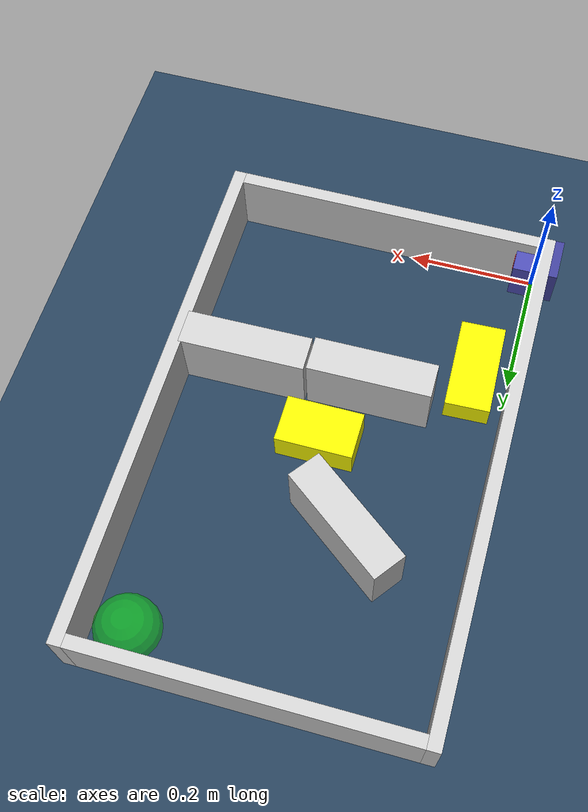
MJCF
<?xml version="1.0" ?>
<mujoco model="generated_environment">
  <option cone="elliptic" integrator="implicitfast" iterations="100" timestep="0.002"/>
  <default>
    <geom density="1"/>
  </default>
  <asset>
    <texture builtin="gradient" height="3072" rgb1="0.3 0.5 0.7" rgb2="0 0 0" type="skybox" width="512"/>
    <texture builtin="checker" height="300" mark="edge" markrgb="0.8 0.8 0.8" name="groundplane" rgb1="0.2 0.3 0.4" rgb2="0.1 0.2 0.3" type="2d" width="300"/>
    <material name="groundplane" reflectance="0.2" texrepeat="5 5" texture="groundplane" texuniform="true"/>
    <material name="robot" rgba="1.0 1.0 0.0 1.0"/>
  </asset>
  <include file="/home/dhruv/projects_dhruv/namo/namo_cpp/test_xml/little-car-modeling-package/assets/mjcf/little_car.xml"/>
  <worldbody>
    <light dir="0 0 -1" directional="true" pos="0 0 1.5"/>
    <geom condim="4" friction="0.5 0.005 0.001" material="groundplane" name="floor" size="0 0 0.05" type="plane"/>
    <body name="walls">
      <geom name="wall_1" condim="4" pos="-0.01 0.3875 0.05" friction="1 0.005 0.0001" rgba="0.800000011920929 0.800000011920929 0.800000011920929 1.0" size="0.01 0.40750000000000003 0.05" type="box"/>
      <geom name="wall_2" condim="4" pos="0.5 0.3875 0.05" friction="1 0.005 0.0001" rgba="0.800000011920929 0.800000011920929 0.800000011920929 1.0" size="0.01 0.40750000000000003 0.05" type="box"/>
      <geom name="wall_3" condim="4" pos="0.245 -0.01 0.05" friction="1 0.005 0.0001" rgba="0.800000011920929 0.800000011920929 0.800000011920929 1.0" size="0.245 0.01 0.05" type="box"/>
      <geom name="wall_4" condim="4" pos="0.245 0.785 0.05" friction="1 0.005 0.0001" rgba="0.800000011920929 0.800000011920929 0.800000011920929 1.0" size="0.245 0.01 0.05" type="box"/>
    </body>
    <body name="obstacle_1_movable">
      <geom name="obstacle_1_movable" condim="4" pos="0.05509595357040654 0.1998308729599578 0.02" quat="-0.01683137708236685 0 0 0.9998583423393091" friction="1 0.005 0.0001" rgba="1 1 0 1" size="0.035 0.075 0.02" type="box" mass="0.1"/>
      <joint type="free"/>
    </body>
    <body name="obstacle_2_movable">
      <geom name="obstacle_2_movable" condim="4" pos="0.2582351481800719 0.3701912406855699 0.025" quat="-0.7067162852682533 0 0 0.7074970615745628" friction="1 0.005 0.0001" rgba="1 1 0 1" size="0.0375 0.06 0.025" type="box" mass="0.1"/>
      <joint type="free"/>
    </body>
    <body name="wall_5">
      <geom name="wall_5" condim="4" pos="0.20189043311880334 0.2781717126324723 0.05" quat="0.9999920594126247 0 0 0.003985111252862593" friction="1 0.005 0.0001" rgba="0.800000011920929 0.800000011920929 0.800000011920929 1.0" size="0.095 0.0275 0.05" type="box"/>
    </body>
    <body name="wall_6">
      <geom name="wall_6" condim="4" pos="0.17889003666856276 0.5159530446460239 0.05" quat="0.8952287683533744 0 0 0.44560683602532447" friction="1 0.005 0.0001" rgba="0.800000011920929 0.800000011920929 0.800000011920929 1.0" size="0.0275 0.0975 0.05" type="box"/>
    </body>
    <body name="wall_7">
      <geom name="wall_7" condim="4" pos="0.39780862471700906 0.28349990090660915 0.05" quat="0.7027420618048301 0 0 0.7114447234819417" friction="1 0.005 0.0001" rgba="0.800000011920929 0.800000011920929 0.800000011920929 1.0" size="0.0275 0.0975 0.05" type="box"/>
    </body>
    <site name="goal" type="sphere" size="0.05 0.05 0.05" rgba="0 1 0 0.5" pos="0.44 0.725 0.0"/>
  </worldbody>
</mujoco>

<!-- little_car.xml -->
<mujoco model="little_car">
  <compiler angle="radian" autolimits="true"/>
  <default>
    <geom condim="4"/>
    <joint damping="0.01" armature="0.0001"/>
  </default>
  <worldbody>
    <body name="car" pos="0 0 0.010000">
      <freejoint name="car_freejoint"/>
      <inertial pos="0.000000 0 0.037500" mass="0.350000"
                diaginertia="0.000266 0.000266 0.000286"/>
      <geom name="front_chassis_collision" type="box" pos="0.017500 0 0.037500"
            size="0.017500 0.035000 0.032500"
            rgba="0.3 0.3 0.7 1"/>
      <geom name="rear_chassis_collision" type="box" pos="-0.017500 0 0.037500"
            size="0.017500 0.035000 0.032500"
            rgba="0.25 0.25 0.6 1"/>
      <geom name="front_marker" type="box" pos="0.034000 0 0.050500"
            size="0.002000 0.015000 0.010000"
            rgba="1.0 0.2 0.2 1" contype="0" conaffinity="0"/>

      <body name="rear_support_body" pos="-0.030000 0.000000 0.002500">
        <joint name="rear_caster_joint" type="ball" damping="0.0001"/>
        <inertial pos="0 0 0" mass="0.025000"
                  diaginertia="0.000001 0.000001 0.000001"/>
        <geom name="rear_support" type="sphere"
              pos="0 0 0"
              size="0.002500"
              friction="0.000000 0.000000 0.000000"
              rgba="0.7 0.1 0.1 1"/>
      </body>

      <body name="front_support_body" pos="0.030000 0.000000 0.002500">
        <joint name="front_caster_joint" type="ball" damping="0.0001"/>
        <inertial pos="0 0 0" mass="0.025000"
                  diaginertia="0.000001 0.000001 0.000001"/>
        <geom name="front_support" type="sphere"
              pos="0 0 0"
              size="0.002500"
              friction="0.000000 0.000000 0.000000"
              rgba="0.1 0.7 0.1 1"/>
      </body>

      <body name="left_wheel" pos="0.000000 0.034000 0.015000">
        <inertial pos="0 0 0" mass="0.050000"
                  diaginertia="0.000003 0.000006 0.000003"/>
        <joint name="left_wheel_joint" type="hinge" axis="0 1 0"/>
        <geom name="left_wheel_collision" type="cylinder" size="0.015000 0.000500"
              euler="1.57079632679 0 0" rgba="0.1 0.1 0.1 1"/>
      </body>

      <body name="right_wheel" pos="0.000000 -0.034000 0.015000">
        <inertial pos="0 0 0" mass="0.050000"
                  diaginertia="0.000003 0.000006 0.000003"/>
        <joint name="right_wheel_joint" type="hinge" axis="0 1 0"/>
        <geom name="right_wheel_collision" type="cylinder" size="0.015000 0.000500"
              euler="1.57079632679 0 0" rgba="0.1 0.1 0.1 1"/>
      </body>
    </body>
  </worldbody>
  <contact>
    <exclude body1="car" body2="left_wheel"/>
    <exclude body1="car" body2="right_wheel"/>
  </contact>
  <actuator>
    <velocity name="left_wheel_drive" joint="left_wheel_joint"
              ctrlrange="-25.000000 25.000000"
              kv="0.750000" forcerange="-0.500000 0.500000"/>
    <velocity name="right_wheel_drive" joint="right_wheel_joint"
              ctrlrange="-25.000000 25.000000"
              kv="0.750000" forcerange="-0.500000 0.500000"/>
  </actuator>
</mujoco>
